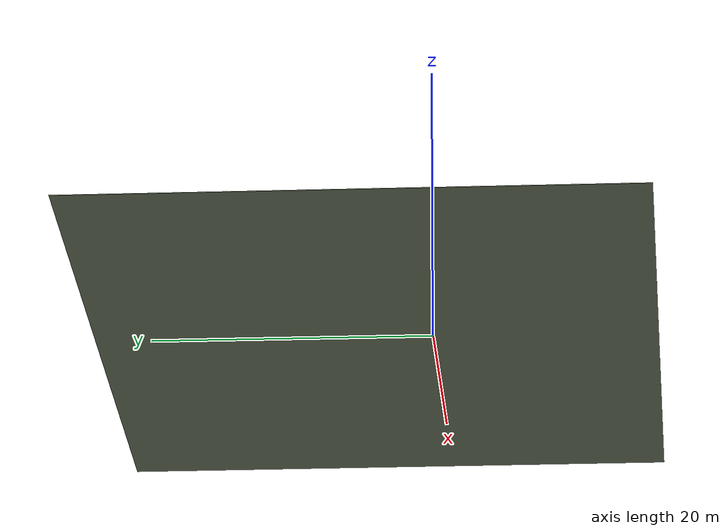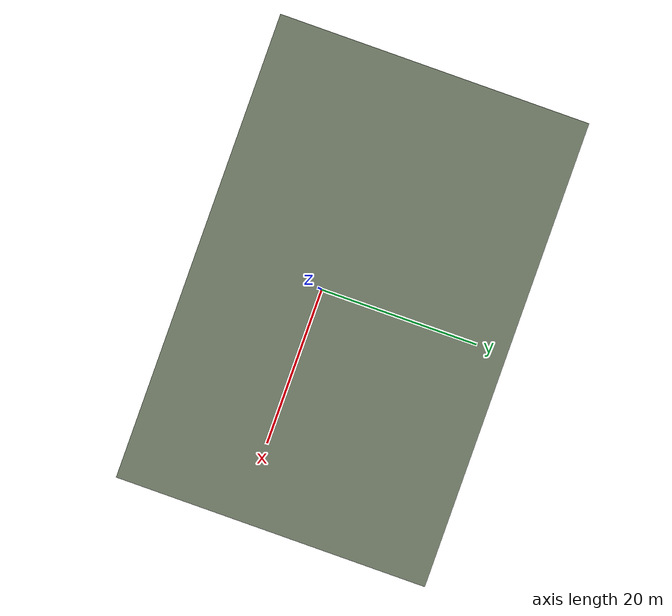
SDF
<?xml version="1.0"?>
<sdf version="1.8">
  <model name="building_ground">
    <static>true</static>
    <pose>0 0 0 0 0 0</pose>
    <link name="ground">
      <pose>0 4 -0.025 0 0 0</pose>
      <collision name="col"><geometry><box><size>60 40 0.05</size></box></geometry></collision>
      <visual name="vis">
        <geometry><box><size>60 40 0.05</size></box></geometry>
        <material><ambient>0.4 0.44 0.36 1</ambient><diffuse>0.4 0.44 0.36 1</diffuse></material>
      </visual>
    </link>
  </model>
</sdf>
